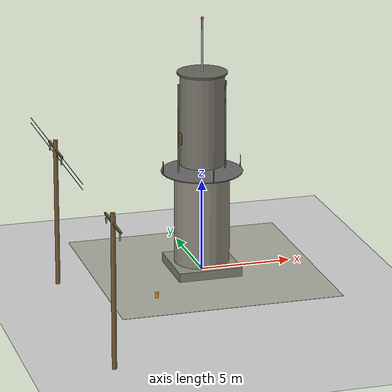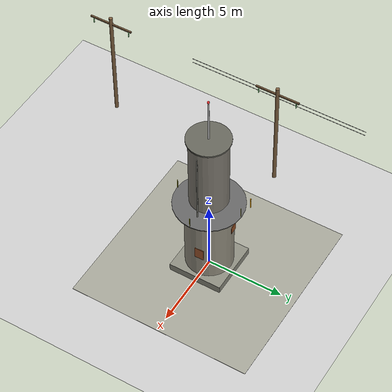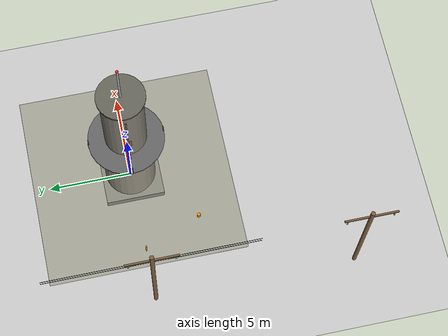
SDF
<sdf version="1.6">
 <world name="inspection_world">
  <include><uri>model://sun</uri></include>
  <include><uri>model://ground_plane</uri></include>
  <model name="concrete_pad">
   <static>true</static>
   <pose>0 0 0.005 0 0 0</pose>
   <link name="pad_link">
    <visual name="pad_visual">
     <geometry><box><size>12 12 0.01</size></box></geometry>
     <material>
      <ambient>0.55 0.55 0.5 1</ambient>
      <diffuse>0.65 0.65 0.6 1</diffuse>
      <specular>0.1 0.1 0.1 1</specular>
     </material>
    </visual>
   </link>
  </model>
  <model name="inspection_tower">
   <static>true</static>
   <link name="tower_link">
    <visual name="foundation">
     <pose>0 0 0.25 0 0 0</pose>
     <geometry><box><size>3.5 3.5 0.5</size></box></geometry>
     <material><ambient>0.45 0.45 0.42 1</ambient><diffuse>0.55 0.55 0.5 1</diffuse></material>
    </visual>
    <collision name="foundation_collision">
     <pose>0 0 0.25 0 0 0</pose>
     <geometry><box><size>3.5 3.5 0.5</size></box></geometry>
    </collision>
    <visual name="lower_section">
     <pose>0 0 3 0 0 0</pose>
     <geometry><cylinder><radius>1.5</radius><length>5.0</length></cylinder></geometry>
     <material><ambient>0.5 0.48 0.44 1</ambient><diffuse>0.6 0.58 0.52 1</diffuse></material>
    </visual>
    <collision name="lower_collision">
     <pose>0 0 3 0 0 0</pose>
     <geometry><cylinder><radius>1.5</radius><length>5.0</length></cylinder></geometry>
    </collision>
    <visual name="transition_ring">
     <pose>0 0 5.55 0 0 0</pose>
     <geometry><cylinder><radius>1.65</radius><length>0.1</length></cylinder></geometry>
     <material><ambient>0.35 0.35 0.32 1</ambient><diffuse>0.45 0.45 0.4 1</diffuse></material>
    </visual>
    <visual name="upper_section">
     <pose>0 0 8.5 0 0 0</pose>
     <geometry><cylinder><radius>1.2</radius><length>5.0</length></cylinder></geometry>
     <material><ambient>0.42 0.4 0.38 1</ambient><diffuse>0.52 0.5 0.46 1</diffuse></material>
    </visual>
    <collision name="upper_collision">
     <pose>0 0 8.5 0 0 0</pose>
     <geometry><cylinder><radius>1.2</radius><length>5.0</length></cylinder></geometry>
    </collision>
    <visual name="top_cap">
     <pose>0 0 11.05 0 0 0</pose>
     <geometry><cylinder><radius>1.35</radius><length>0.1</length></cylinder></geometry>
     <material><ambient>0.3 0.3 0.28 1</ambient><diffuse>0.4 0.4 0.36 1</diffuse></material>
    </visual>
    <visual name="antenna">
     <pose>0 0 12.5 0 0 0</pose>
     <geometry><cylinder><radius>0.05</radius><length>2.8</length></cylinder></geometry>
     <material>
      <ambient>0.6 0.6 0.6 1</ambient>
      <diffuse>0.7 0.7 0.7 1</diffuse>
      <specular>0.8 0.8 0.8 1</specular>
     </material>
    </visual>
    <visual name="antenna_light">
     <pose>0 0 14.0 0 0 0</pose>
     <geometry><sphere><radius>0.08</radius></sphere></geometry>
     <material>
      <ambient>1.0 0.0 0.0 1</ambient>
      <diffuse>1.0 0.2 0.2 1</diffuse>
      <emissive>1.0 0.0 0.0 1</emissive>
     </material>
    </visual>
    <visual name="rust_patch_1">
     <pose>1.49 0.2 2.5 0 0 0</pose>
     <geometry><box><size>0.04 0.6 0.8</size></box></geometry>
     <material><ambient>0.55 0.3 0.15 1</ambient><diffuse>0.65 0.35 0.18 1</diffuse></material>
    </visual>
    <visual name="rust_patch_2">
     <pose>-0.3 1.48 3.8 0 0 0</pose>
     <geometry><box><size>0.5 0.04 0.5</size></box></geometry>
     <material><ambient>0.5 0.28 0.12 1</ambient><diffuse>0.6 0.32 0.15 1</diffuse></material>
    </visual>
    <visual name="rust_patch_3">
     <pose>-1.18 0.0 7.5 0 0 0</pose>
     <geometry><box><size>0.04 0.4 0.6</size></box></geometry>
     <material><ambient>0.6 0.33 0.14 1</ambient><diffuse>0.7 0.38 0.17 1</diffuse></material>
    </visual>
    <visual name="conduit_1">
     <pose>1.3 0 5.5 0 0 0</pose>
     <geometry><cylinder><radius>0.04</radius><length>10.0</length></cylinder></geometry>
     <material><ambient>0.35 0.35 0.33 1</ambient><diffuse>0.45 0.45 0.42 1</diffuse></material>
    </visual>
    <visual name="conduit_2">
     <pose>-1.3 0 5.5 0 0 0</pose>
     <geometry><cylinder><radius>0.04</radius><length>10.0</length></cylinder></geometry>
     <material><ambient>0.35 0.35 0.33 1</ambient><diffuse>0.45 0.45 0.42 1</diffuse></material>
    </visual>
    <visual name="walkway">
     <pose>0 0 5.6 0 0 0</pose>
     <geometry><cylinder><radius>2.2</radius><length>0.05</length></cylinder></geometry>
     <material><ambient>0.3 0.3 0.3 1</ambient><diffuse>0.4 0.4 0.4 1</diffuse></material>
    </visual>
    <visual name="railing_post_1">
     <pose>2.15 0 5.95 0 0 0</pose>
     <geometry><cylinder><radius>0.02</radius><length>0.7</length></cylinder></geometry>
     <material><ambient>0.4 0.4 0.0 1</ambient><diffuse>0.6 0.6 0.0 1</diffuse></material>
    </visual>
    <visual name="railing_post_2">
     <pose>-2.15 0 5.95 0 0 0</pose>
     <geometry><cylinder><radius>0.02</radius><length>0.7</length></cylinder></geometry>
     <material><ambient>0.4 0.4 0.0 1</ambient><diffuse>0.6 0.6 0.0 1</diffuse></material>
    </visual>
    <visual name="railing_post_3">
     <pose>0 2.15 5.95 0 0 0</pose>
     <geometry><cylinder><radius>0.02</radius><length>0.7</length></cylinder></geometry>
     <material><ambient>0.4 0.4 0.0 1</ambient><diffuse>0.6 0.6 0.0 1</diffuse></material>
    </visual>
    <visual name="railing_post_4">
     <pose>0 -2.15 5.95 0 0 0</pose>
     <geometry><cylinder><radius>0.02</radius><length>0.7</length></cylinder></geometry>
     <material><ambient>0.4 0.4 0.0 1</ambient><diffuse>0.6 0.6 0.0 1</diffuse></material>
    </visual>
   </link>
  </model>
  <model name="barrier_post_3">
   <static>true</static>
   <pose>-5 0 0.4 0 0 0</pose>
   <link name="link">
    <visual name="post">
     <geometry><cylinder><radius>0.04</radius><length>0.8</length></cylinder></geometry>
     <material><ambient>0.7 0.5 0.0 1</ambient><diffuse>0.9 0.6 0.0 1</diffuse></material>
    </visual>
   </link>
  </model>
  <model name="power_pole_1">
   <static>true</static>
   <pose>-8 -12 0 0 0 0</pose>
   <link name="pole_link">
    <visual name="pole">
     <pose>0 0 4 0 0 0</pose>
     <geometry><cylinder><radius>0.12</radius><length>8</length></cylinder></geometry>
     <material><ambient>0.4 0.3 0.2 1</ambient><diffuse>0.5 0.38 0.25 1</diffuse></material>
    </visual>
    <visual name="cross_arm">
     <pose>0 0 7.5 0 0 0</pose>
     <geometry><box><size>0.1 3.0 0.1</size></box></geometry>
     <material><ambient>0.4 0.3 0.2 1</ambient><diffuse>0.5 0.38 0.25 1</diffuse></material>
    </visual>
    <visual name="insulator_l">
     <pose>0 -1.3 7.2 0 0 0</pose>
     <geometry><cylinder><radius>0.04</radius><length>0.3</length></cylinder></geometry>
     <material><ambient>0.3 0.6 0.3 1</ambient><diffuse>0.4 0.7 0.4 1</diffuse></material>
    </visual>
    <visual name="insulator_r">
     <pose>0 1.3 7.2 0 0 0</pose>
     <geometry><cylinder><radius>0.04</radius><length>0.3</length></cylinder></geometry>
     <material><ambient>0.3 0.6 0.3 1</ambient><diffuse>0.4 0.7 0.4 1</diffuse></material>
    </visual>
    <collision name="pole_col">
     <pose>0 0 4 0 0 0</pose>
     <geometry><cylinder><radius>0.12</radius><length>8</length></cylinder></geometry>
    </collision>
   </link>
  </model>
  <model name="power_pole_2">
   <static>true</static>
   <pose>-8 0 0 0 0 0</pose>
   <link name="pole_link">
    <visual name="pole">
     <pose>0 0 4 0 0 0</pose>
     <geometry><cylinder><radius>0.12</radius><length>8</length></cylinder></geometry>
     <material><ambient>0.4 0.3 0.2 1</ambient><diffuse>0.5 0.38 0.25 1</diffuse></material>
    </visual>
    <visual name="cross_arm">
     <pose>0 0 7.5 0 0 0</pose>
     <geometry><box><size>0.1 3.0 0.1</size></box></geometry>
     <material><ambient>0.4 0.3 0.2 1</ambient><diffuse>0.5 0.38 0.25 1</diffuse></material>
    </visual>
    <visual name="insulator_l">
     <pose>0 -1.3 7.2 0 0 0</pose>
     <geometry><cylinder><radius>0.04</radius><length>0.3</length></cylinder></geometry>
     <material><ambient>0.3 0.6 0.3 1</ambient><diffuse>0.4 0.7 0.4 1</diffuse></material>
    </visual>
    <visual name="insulator_r">
     <pose>0 1.3 7.2 0 0 0</pose>
     <geometry><cylinder><radius>0.04</radius><length>0.3</length></cylinder></geometry>
     <material><ambient>0.3 0.6 0.3 1</ambient><diffuse>0.4 0.7 0.4 1</diffuse></material>
    </visual>
   </link>
  </model>
  <model name="power_line_1">
   <static>true</static>
   <pose>-8 0 7.2 0 1.5708 1.5708</pose>
   <link name="wire">
    <visual name="w">
     <geometry><cylinder><radius>0.01</radius><length>12</length></cylinder></geometry>
     <material><ambient>0.1 0.1 0.1 1</ambient><diffuse>0.15 0.15 0.15 1</diffuse></material>
    </visual>
   </link>
  </model>
  <model name="power_line_2">
   <static>true</static>
   <pose>-8 0 7.5 0 1.5708 1.5708</pose>
   <link name="wire">
    <visual name="w">
     <geometry><cylinder><radius>0.01</radius><length>12</length></cylinder></geometry>
     <material><ambient>0.1 0.1 0.1 1</ambient><diffuse>0.15 0.15 0.15 1</diffuse></material>
    </visual>
   </link>
  </model>
  <model name="cone_4">
   <static>true</static>
   <pose>-3.5 -3.5 0.15 0 0 0</pose>
   <link name="l">
    <visual name="v">
     <geometry><cylinder><radius>0.1</radius><length>0.3</length></cylinder></geometry>
     <material><ambient>1.0 0.5 0.0 1</ambient><diffuse>1 0.6 0.0 1</diffuse></material>
    </visual>
   </link>
  </model>
  <model name="checkpoint_power">
   <static>true</static>
   <pose>-8 -12 0.3 0 0 0</pose>
   <link name="l">
    <visual name="v">
     <geometry><sphere><radius>0.12</radius></sphere></geometry>
     <material>
      <ambient>0.0 0.8 0.2 1</ambient>
      <diffuse>0.0 1.0 0.3 1</diffuse>
      <emissive>0.0 0.6 0.15 1</emissive>
     </material>
    </visual>
   </link>
  </model>
 </world>
</sdf>
